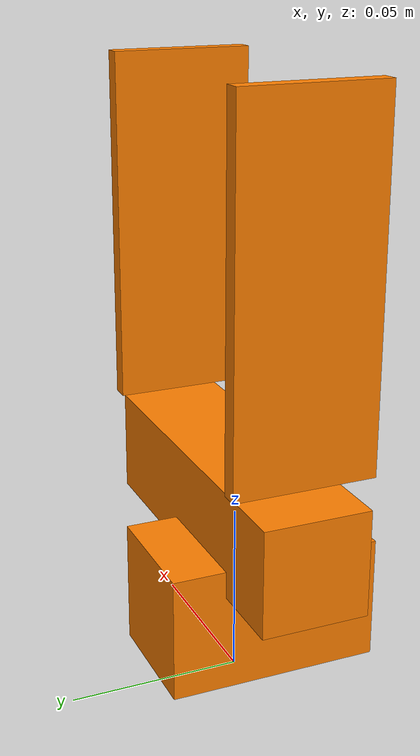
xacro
<?xml version="1.0" encoding="UTF-8"?>
<robot name="justina_gripper" xmlns:xacro="http://www.ros.org/wiki/xacro">
  <xacro:include filename="$(find justina_description)/urdf/justina_gripper.gazebo"/>

  <link name="gr_left_arm_link7">
    <visual>
      <origin xyz="-0.01 0 0.03" rpy = "0 0 0"/>
      <geometry>
        <box size = "0.03525 0.06 0.03525"/>
      </geometry>
      <material name = "la_material"><color rgba="1.0 0.5 0 1"/></material>
      <meta>
        <layer>1</layer>
      </meta>
    </visual>
    <visual>
      <origin xyz="0 0 0.055" rpy = "0 0 0"/>
      <geometry>
        <box size = "0.1 0.03 0.03"/>
      </geometry>
      <material name = "la_material"><color rgba="1.0 0.5 0 1"/></material>
      <meta>
        <layer>1</layer>
      </meta>
    </visual>
    <collision>
      <origin xyz="-0.01 0 0.03" rpy = "0 0 0"/>
      <geometry>
        <box size = "0.03525 0.06 0.03525"/>
      </geometry>
      <surface>
	<contact>
	  <collide_bitmask>0x01</collide_bitmask>
	</contact>
      </surface>
    </collision>
    <collision>
      <origin xyz="0 0 0.055" rpy = "0 0 0"/>
      <geometry>
        <box size = "0.1 0.03 0.03"/>
      </geometry>
      <surface>
	<contact>
	  <collide_bitmask>0x01</collide_bitmask>
	</contact>
      </surface>
    </collision>
    <inertial>
      <origin xyz="-0.01 0 0.05" rpy = "0 0 0"/>
      <mass value="0.125"/>
      <inertia
        ixx="0.0015" ixy="0.0" ixz="0.0"
        iyy="0.002175" iyz="0.0"
        izz="0.003075"/>
    </inertial>
  </link>

  <link name="gr_left_arm_grip_left">
    <visual>
      <origin xyz="0 0 0.065" rpy = "0 0 0"/>
      <geometry>
        <box size = "0.005, 0.04, 0.1"/>
      </geometry>
      <material name = "la_material"><color rgba="1.0 0.5 0 1"/></material>
      <meta>
    <layer>1</layer>
  </meta>
    </visual>
    <collision name = 'gr_left_arm_grip_left_collision'>
      <origin xyz="0 0 0.065" rpy = "0 0 0"/>
      <geometry>
        <box size = "0.005, 0.04, 0.1"/>
      </geometry>
      <surface>
	<contact>
	  <collide_bitmask>0x01</collide_bitmask>
	</contact>
      </surface>
    </collision>
    <inertial>
      <origin xyz="0 0 0.065" rpy = "0 0 0"/>
      <mass value="0.125"/>
      <inertia
        ixx="0.0015" ixy="0.0" ixz="0.0"
        iyy="0.002175" iyz="0.0"
        izz="0.003075"/>
    </inertial>
  </link>

  <link name="gr_left_arm_grip_right">
    <visual>
      <origin xyz="0 0 0.065" rpy = "0 0 0"/>
      <geometry>
        <box size = "0.005, 0.04, 0.1"/>
      </geometry>
      <material name = "la_material"><color rgba="1.0 0.5 0 1"/></material>
    </visual>
    <collision name = 'gr_left_arm_grip_right_collision'>
      <origin xyz="0 0 0.065" rpy = "0 0 0"/>
      <geometry>
        <box size = "0.005, 0.04, 0.1"/>
      </geometry>
      <surface>
	<contact>
	  <collide_bitmask>0x01</collide_bitmask>
	</contact>
      </surface>
    </collision>
    <inertial>
      <origin xyz="0 0 0.065" rpy = "0 0 0"/>
      <mass value="0.125"/>
      <inertia
        ixx="0.0015" ixy="0.0" ixz="0.0"
        iyy="0.002175" iyz="0.0"
        izz="0.003075"/>
    </inertial>
  </link>

  <link name="gr_left_arm_grip_center"/>

  <joint name="gr_la_grip_left" type="revolute">
    <origin xyz="0.04 0.0 0.06" rpy="0 0 0"/>
    <parent link="gr_left_arm_link7"/>
    <child link="gr_left_arm_grip_left"/>
    <axis xyz="0 1 0" />
    <dynamics damping ="0.1" />
    <limit effort="3.0" velocity="3.0" lower="-0.3" upper="1.5"/>
  </joint>

  <joint name="gr_la_grip_right" type="revolute">
    <origin xyz="-0.04 0.0 0.06" rpy="0 0 0"/>
    <parent link="gr_left_arm_link7"/>
    <child link="gr_left_arm_grip_right"/>
    <axis xyz="0 -1 0" />
    <dynamics damping ="0.1" />
    <limit effort="3.0" velocity="3.0" lower="-0.3" upper="1.5"/>
  </joint>

  <joint name="gr_la_grip_center_joint" type="fixed">
    <origin xyz="0 0 0.12" rpy="0 0 0"/>
    <parent link="gr_left_arm_link7"/>
    <child link="gr_left_arm_grip_center"/>
  </joint>

</robot>
